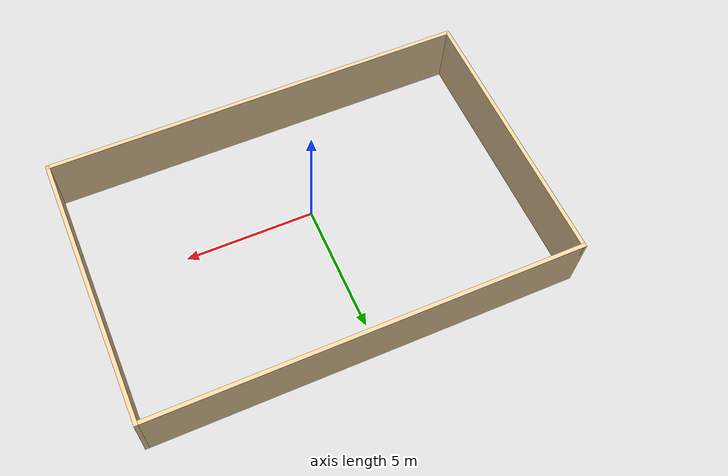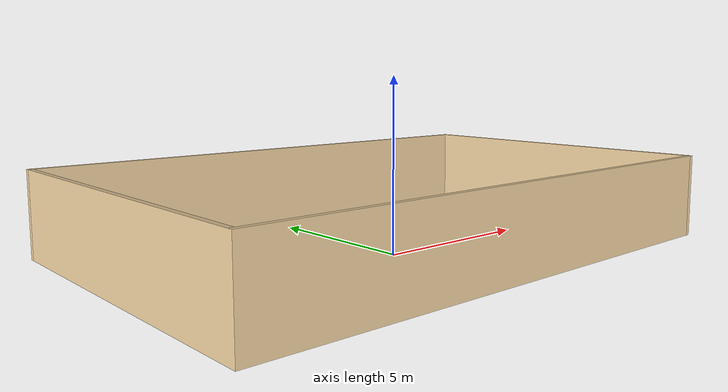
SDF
<?xml version='1.0'?>
<sdf version='1.7'>
  <model name='mapa_new'>
    <pose>0.485 0.975 0 0 -0 0</pose>
    <link name='Wall_2'>
      <collision name='Wall_2_Collision'>
        <geometry>
          <box>
            <size>16.38 0.15 2.5</size>
          </box>
        </geometry>
        <pose>0 0 1.25 0 -0 0</pose>
      </collision>
      <visual name='Wall_2_Visual'>
        <pose>0 0 1.25 0 -0 0</pose>
        <geometry>
          <box>
            <size>16.38 0.15 2.5</size>
          </box>
        </geometry>
        <material>
          <script>
            <uri>file://media/materials/scripts/gazebo.material</uri>
            <name>Gazebo/Grey</name>
          </script>
          <ambient>0.921569 0.807843 0.615686 1</ambient>
        </material>
        <meta>
          <layer>0</layer>
        </meta>
      </visual>
      <pose>-0 5.175 0 0 -0 0</pose>
    </link>
    <link name='Wall_4'>
      <collision name='Wall_4_Collision'>
        <geometry>
          <box>
            <size>10.5 0.15 2.5</size>
          </box>
        </geometry>
        <pose>0 0 1.25 0 -0 0</pose>
      </collision>
      <visual name='Wall_4_Visual'>
        <pose>0 0 1.25 0 -0 0</pose>
        <geometry>
          <box>
            <size>10.5 0.15 2.5</size>
          </box>
        </geometry>
        <material>
          <script>
            <uri>file://media/materials/scripts/gazebo.material</uri>
            <name>Gazebo/Grey</name>
          </script>
          <ambient>0.921569 0.807843 0.615686 1</ambient>
        </material>
        <meta>
          <layer>0</layer>
        </meta>
      </visual>
      <pose>-8.115 0 0 0 -0 -1.5708</pose>
    </link>
    <link name='Wall_6'>
      <collision name='Wall_6_Collision'>
        <geometry>
          <box>
            <size>10.5 0.15 2.5</size>
          </box>
        </geometry>
        <pose>0 0 1.25 0 -0 0</pose>
      </collision>
      <visual name='Wall_6_Visual'>
        <pose>0 0 1.25 0 -0 0</pose>
        <geometry>
          <box>
            <size>10.5 0.15 2.5</size>
          </box>
        </geometry>
        <material>
          <script>
            <uri>file://media/materials/scripts/gazebo.material</uri>
            <name>Gazebo/Grey</name>
          </script>
          <ambient>0.921569 0.807843 0.615686 1</ambient>
        </material>
        <meta>
          <layer>0</layer>
        </meta>
      </visual>
      <pose>8.115 0 0 0 -0 -1.5708</pose>
    </link>
    <link name='Wall_8'>
      <collision name='Wall_8_Collision'>
        <geometry>
          <box>
            <size>16.38 0.15 2.5</size>
          </box>
        </geometry>
        <pose>0 0 1.25 0 -0 0</pose>
      </collision>
      <visual name='Wall_8_Visual'>
        <pose>0 0 1.25 0 -0 0</pose>
        <geometry>
          <box>
            <size>16.38 0.15 2.5</size>
          </box>
        </geometry>
        <material>
          <script>
            <uri>file://media/materials/scripts/gazebo.material</uri>
            <name>Gazebo/Grey</name>
          </script>
          <ambient>0.921569 0.807843 0.615686 1</ambient>
        </material>
        <meta>
          <layer>0</layer>
        </meta>
      </visual>
      <pose>-0 -5.175 0 0 -0 0</pose>
    </link>
    <static>1</static>
  </model>
</sdf>
